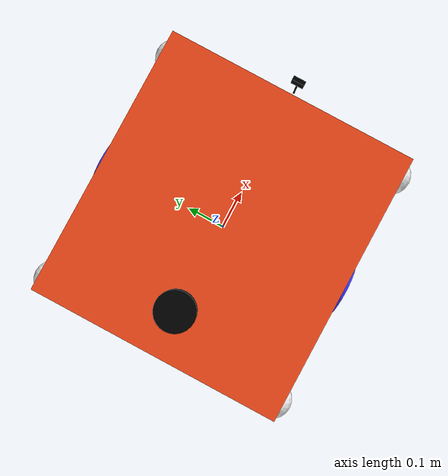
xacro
<?xml version="1.0"?>
<robot name="diff_bot"
       xmlns:xacro="http://ros.org/wiki/xacro">
    <xacro:include filename="chassis.xacro"/>
    <xacro:include filename="gazebo_control.xacro"/>
    <xacro:include filename="control.xacro"/>
    <xacro:include filename="lidar.xacro"/>
    <xacro:include filename="camera.xacro"/>

</robot>

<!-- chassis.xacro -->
<robot xmlns:xacro="http://www.ros.org/wiki/xacro" >

    <xacro:include filename="inertial_macros.xacro"/>

    <xacro:property name="chassis_length" value="0.7"/>
    <xacro:property name="chassis_width" value="0.65"/>
    <xacro:property name="chassis_height" value="0.2"/>
    <xacro:property name="chassis_mass" value="1.0"/>

    <xacro:property name="wheel_radius" value="0.075"/>
    <xacro:property name="wheel_thickness" value="0.04"/>
    <xacro:property name="wheel_mass" value="0.05"/>
    <xacro:property name="wheel_offset_x" value="0.35"/>
    <xacro:property name="wheel_offset_y" value="0.325"/>
    <xacro:property name="wheel_offset_z" value="0.05"/>

    <xacro:property name="caster_wheel_radius" value="0.05"/>
    <xacro:property name="caster_wheel_mass" value="0.01"/>
    <xacro:property name="right_back_wheel_offset_x" value="0.02"/>
    <xacro:property name="left_back_wheel_offset_x" value="0.02"/>
    <xacro:property name="right_fwd_wheel_offset_x" value="0.68"/>
    <xacro:property name="left_fwd_wheel_offset_x" value="0.68"/>
    <xacro:property name="right_back_wheel_offset_y" value="0.325"/>
    <xacro:property name="left_back_wheel_offset_y" value="-0.325"/>
    <xacro:property name="right_fwd_wheel_offset_y" value="0.325"/>
    <xacro:property name="left_fwd_wheel_offset_y" value="-0.325"/>
    <xacro:property name="caster_wheel_offset_z" value="${wheel_offset_z - wheel_radius + caster_wheel_radius}"/>

    <material name="white">
        <color rgba="1 1 1 1" />
    </material>

    <material name="orange">
        <color rgba="1 0.3 0.1 1"/>
    </material>

    <material name="blue">
        <color rgba="0.2 0.2 1 1"/>
    </material>

    <material name="black">
        <color rgba="0 0 0 1"/>
    </material>

    <material name="red">
        <color rgba="1 0 0 1"/>
    </material>

    <!-- BASE LINK -->

    <link name="base_link">

    </link>

    <!-- BASE_FOOTPRINT LINK AND JOINT-->

    <joint name="base_footprint_joint" type="fixed">
        <parent link="base_link"/>
        <child link="base_footprint"/>
        <origin xyz="0 0 0" rpy="0 0 0"/>
    </joint>

    <link name="base_footprint">
    </link>

    <!-- CHASSIS LINK -->

    <joint name="chassis_joint" type="fixed">
        <parent link="base_link"/>
        <child link="chassis_link"/>
        <origin xyz="${-wheel_offset_x} 0 ${-wheel_offset_z}"/>
    </joint>

    <link name="chassis_link">
        <visual>
            <origin xyz="${chassis_length/2} 0 ${chassis_height/2}"/>
            <geometry>
                <box size="${chassis_length} ${chassis_width} ${chassis_height}"/>
            </geometry>
            <material name="orange"/>
        </visual>
        <collision>
            <origin xyz="${chassis_length/2} 0 ${chassis_height/2}"/>
            <geometry>
                <box size="${chassis_length} ${chassis_width} ${chassis_height}"/>
            </geometry>
        </collision>
        <xacro:inertial_box mass="0.5" x="${chassis_length}" y="${chassis_width}" z="${chassis_height}">
            <origin xyz="${chassis_length/2} 0 ${chassis_height/2}" rpy="0 0 0"/>
        </xacro:inertial_box>
    </link>

    <gazebo reference="chassis_link">
        <material>Gazebo/Orange</material>
    </gazebo>

    <!-- LEFT WHEEL LINK -->

    <joint name="left_wheel_joint" type="continuous">
        <parent link="base_link"/>
        <child link="left_wheel"/>
        <origin xyz="0 ${wheel_offset_y} 0" rpy="-${pi/2} 0 0" /> <!-- rotating the axes of cylinder from default mode to make axis of rotation normal to the chassis-->
        <axis xyz="0 0 1"/> <!-- determining the axis of rotation to the wheel about z axis -->
    </joint>

    <link name="left_wheel">
        <visual>
            <geometry>
                <cylinder radius="${wheel_radius}" length="${wheel_thickness}"/>
            </geometry>
            <material name="blue"/>
        </visual>
        <collision>
            <geometry>
                <sphere radius="${wheel_radius}"/>
            </geometry>
        </collision>
        <xacro:inertial_cylinder mass="${wheel_mass}" length="${wheel_thickness}" radius="${wheel_radius}">
            <origin xyz="0 0 0" rpy="0 0 0"/>
        </xacro:inertial_cylinder>
    </link>

    <gazebo reference="left_wheel">
        <material>Gazebo/Blue</material>
    </gazebo>

    <!-- RIGHT WHEEL LINK -->

    <joint name="right_wheel_joint" type="continuous">
        <parent link="base_link"/>
        <child link="right_wheel"/>
        <origin xyz="0 ${-wheel_offset_y} 0" rpy="${pi/2} 0 0" />
        <axis xyz="0 0 -1"/>
    </joint>

    <link name="right_wheel">
        <visual>
            <geometry>
                <cylinder radius="${wheel_radius}" length="${wheel_thickness}"/>
            </geometry>
            <material name="blue"/>
        </visual>
        <collision>
            <geometry>
                <sphere radius="${wheel_radius}"/>
            </geometry>
        </collision>
        <xacro:inertial_cylinder mass="${wheel_mass}" length="${wheel_thickness}" radius="${wheel_radius}">
            <origin xyz="0 0 0" rpy="0 0 0"/>
        </xacro:inertial_cylinder>
    </link>

    <gazebo reference="right_wheel">
        <material>Gazebo/Blue</material>
    </gazebo>

    <!-- RIGHT_BACK WHEEL LINK -->

    <joint name="right_back_wheel_joint" type="fixed">
        <parent link="chassis_link"/>
        <child link="right_back_wheel"/>
        <origin xyz="${right_back_wheel_offset_x} ${right_back_wheel_offset_y} ${caster_wheel_offset_z}"/>
    </joint>

    <link name="right_back_wheel">
        <visual>
            <geometry>
                <sphere radius="${caster_wheel_radius}"/>
            </geometry>
            <material name="white"/>
        </visual>
        <collision>
            <geometry>
                <sphere radius="${caster_wheel_radius}"/>
            </geometry>
        </collision>
        <xacro:inertial_sphere mass="${caster_wheel_mass}" radius="${caster_wheel_radius}">
            <origin xyz="0 0 0" rpy="0 0 0"/>
        </xacro:inertial_sphere>
    </link>

        <!-- LEFT_BACK WHEEL LINK -->

        <joint name="left_back_wheel_joint" type="fixed">
            <parent link="chassis_link"/>
            <child link="left_back_wheel"/>
            <origin xyz="${left_back_wheel_offset_x} ${left_back_wheel_offset_y} ${caster_wheel_offset_z}"/>
        </joint>

        <link name="left_back_wheel">
            <visual>
                <geometry>
                    <sphere radius="${caster_wheel_radius}"/>
                </geometry>
                <material name="white"/>
            </visual>
            <collision>
                <geometry>
                    <sphere radius="${caster_wheel_radius}"/>
                </geometry>
            </collision>
            <xacro:inertial_sphere mass="${caster_wheel_mass}" radius="${caster_wheel_radius}">
                <origin xyz="0 0 0" rpy="0 0 0"/>
            </xacro:inertial_sphere>
        </link>

        <!-- RIGHT_FWD WHEEL LINK -->

        <joint name="right_fwd_wheel_joint" type="fixed">
            <parent link="chassis_link"/>
            <child link="right_fwd_wheel"/>
            <origin xyz="${right_fwd_wheel_offset_x} ${right_fwd_wheel_offset_y} ${caster_wheel_offset_z}"/>
        </joint>

        <link name="right_fwd_wheel">
            <visual>
                <geometry>
                    <sphere radius="${caster_wheel_radius}"/>
                </geometry>
                <material name="white"/>
            </visual>
            <collision>
                <geometry>
                    <sphere radius="${caster_wheel_radius}"/>
                </geometry>
            </collision>
            <xacro:inertial_sphere mass="${caster_wheel_mass}" radius="${caster_wheel_radius}">
            <origin xyz="0 0 0" rpy="0 0 0"/>
            </xacro:inertial_sphere>
        </link>

        <!-- LEFT_FWD WHEEL LINK -->

        <joint name="left_fwd_wheel_joint" type="fixed">
            <parent link="chassis_link"/>
            <child link="left_fwd_wheel"/>
            <origin xyz="${left_fwd_wheel_offset_x} ${left_fwd_wheel_offset_y} ${caster_wheel_offset_z}"/>
        </joint>

        <link name="left_fwd_wheel">
            <visual>
                <geometry>
                    <sphere radius="${caster_wheel_radius}"/>
                </geometry>
                <material name="white"/>
            </visual>
            <collision>
                <geometry>
                    <sphere radius="${caster_wheel_radius}"/>
                </geometry>
            </collision>
            <xacro:inertial_sphere mass="${caster_wheel_mass}" radius="${caster_wheel_radius}">
                <origin xyz="0 0 0" rpy="0 0 0"/>
            </xacro:inertial_sphere>
        </link>

    <gazebo reference="right_back_wheel">
        <material>Gazebo/White</material>
        <mu1 value="0.001"/>
        <mu2 value="0.001"/>
    </gazebo>

    <gazebo reference="left_back_wheel">
        <material>Gazebo/White</material>
        <mu1 value="0.001"/>
        <mu2 value="0.001"/>
    </gazebo>

    <gazebo reference="right_fwd_wheel">
        <material>Gazebo/White</material>
        <mu1 value="0.001"/>
        <mu2 value="0.001"/>
    </gazebo>

    <gazebo reference="left_fwd_wheel">
        <material>Gazebo/White</material>
        <mu1 value="0.001"/>
        <mu2 value="0.001"/>
    </gazebo>

</robot>

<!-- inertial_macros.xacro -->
<robot name="diff_bot"
       xmlns:xacro="http://ros.org/wiki/xacro">
       <xacro:macro name="inertial_box" params="mass x y z *origin">
        <inertial>
            <xacro:insert_block name="origin"/>
            <mass value="${mass}"/>
            <inertia ixx="${(1/12) * mass *(y*y+z*z)}" ixy="0.0" ixz="0.0"
                     iyy="${(1/12) * mass *(x*x+y*y)}" iyz="0.0"
                     izz="${(1/12) * mass *(x*x+y*y)}"/>

            </inertial>
    </xacro:macro>

  <xacro:macro name="inertial_sphere" params="mass radius *origin">
    <inertial>
      <xacro:insert_block name="origin"/>
      <mass value="${mass}" />
      <inertia ixx="${(2/5) * mass * (radius*radius) }" ixy="0.0" ixz="0.0"
               iyy="${(2/5) * mass * (radius*radius) }" iyz="0.0"
               izz="${(2/5) * mass * (radius*radius) }" />
    </inertial>
  </xacro:macro>

  <xacro:macro name="inertial_cylinder" params="mass length radius *origin">
    <inertial>
      <xacro:insert_block name="origin"/>
      <mass value="${mass}" />
      <inertia ixx="${(1/12) * mass * (3*radius*radius + length*length)}" ixy="0.0" ixz="0.0"
               iyy="${(1/12) * mass * (3*radius*radius + length*length)}" iyz="0.0"
               izz="${(1/2) * mass * (radius*radius)}" />
    </inertial>
  </xacro:macro>

</robot>

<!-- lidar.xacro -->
<robot xmlns:xacro="http://www.ros.org/wiki/xacro">

    <!-- Lidar Frame -->
    <link name="laser_frame">
        <visual>
            <geometry>
                <cylinder radius="0.05" length="0.04"/>
            </geometry>
            <material name="black"/>
        </visual>
    </link>
    <gazebo reference="laser_frame">
        <material>
            Gazebo/Black
        </material>
    </gazebo>

    <joint name="laser_joint" type="fixed">
        <origin xyz="0.122 0.0 0.25" rpy="0.0 0.0 0.0"/>
        <parent link="chassis_link"/>
        <child link="laser_frame"/>
    </joint>

    <!-- Lidar Plugin -->
    <gazebo reference="laser_frame">
        <material>Gazebo/Black</material>

        <sensor name="laser" type="ray">
            <pose> 0 0 0 0 0 0 </pose>
            <visualize>false</visualize>
            <update_rate>100</update_rate>
            <ray>
                <scan>
                    <horizontal>
                        <samples>360</samples>
                        <min_angle>-3.14</min_angle>
                        <max_angle>3.14</max_angle>
                    </horizontal>
                </scan>
                <range>
                    <min>0.3</min>
                    <max>12</max>
                </range>
            </ray>
            <plugin name="laser_controller" filename="libgazebo_ros_ray_sensor.so">
                <ros>
                    <argument>~/out:=scan</argument>
                </ros>
                <output_type>sensor_msgs/LaserScan</output_type>
                <frame_name>laser_frame</frame_name>
            </plugin>
        </sensor>
    </gazebo>
</robot>

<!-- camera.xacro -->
<robot xmlns:xacro="http://www.ros.org/wiki/xacro" >

    <joint name="camera_joint" type="fixed">
        <parent link="chassis_link"/>
        <child link="camera_link"/>
        <origin xyz="0.705 0 0.3" rpy="0 0 0"/>
    </joint>

    <link name="camera_link">
        <visual>
            <geometry>
                <box size="0.010 0.03 0.03"/>
            </geometry>
            <material name="black"/>
        </visual>
        <visual>
            <origin xyz="0 0 -0.05"/>
            <geometry>
                <cylinder radius="0.002" length="0.1"/>
            </geometry>
            <material name="black"/>
        </visual>
    </link>

    <joint name="camera_optical_joint" type="fixed">
        <parent link="camera_link"/>
        <child link="camera_link_optical"/>
        <origin xyz="0 0 0" rpy="${-pi/2} 0 ${-pi/2}"/>
    </joint>

    <link name="camera_link_optical"></link>

    <gazebo reference="camera_link">
        <material>Gazebo/Black</material>

        <sensor name="camera" type="camera">
            <pose> 0 0 0 0 0 0 </pose>
            <visualize>true</visualize>
            <update_rate>10</update_rate>
            <camera>
                <horizontal_fov>0.2</horizontal_fov>
                <image>
                    <format>R8G8B8</format>
                    <width>320</width>
                    <height>200</height>
                </image>
                <clip>
                    <near>0.05</near>
                    <far>8.0</far>
                </clip>
            </camera>
            <plugin name="camera_controller" filename="libgazebo_ros_camera.so">
                <frame_name>camera_link_optical</frame_name>
            </plugin>
        </sensor>
    </gazebo>

</robot>
